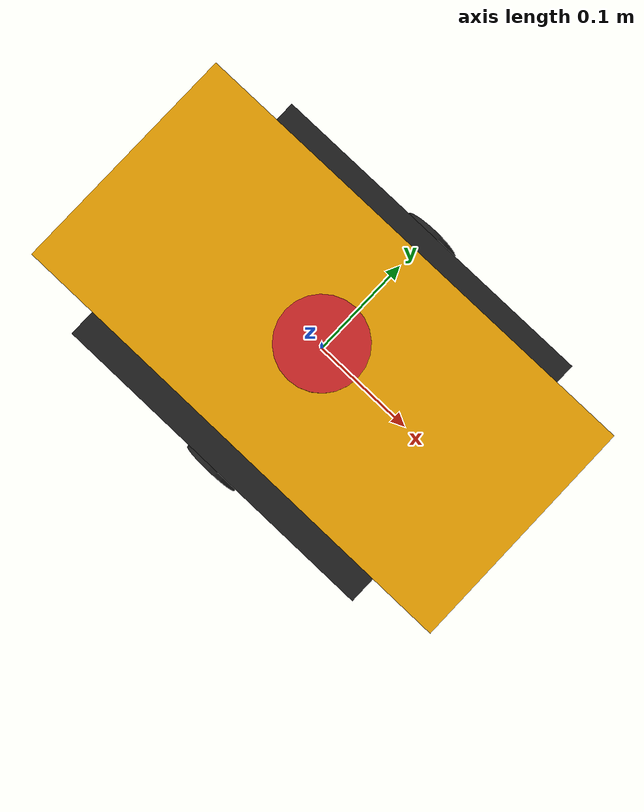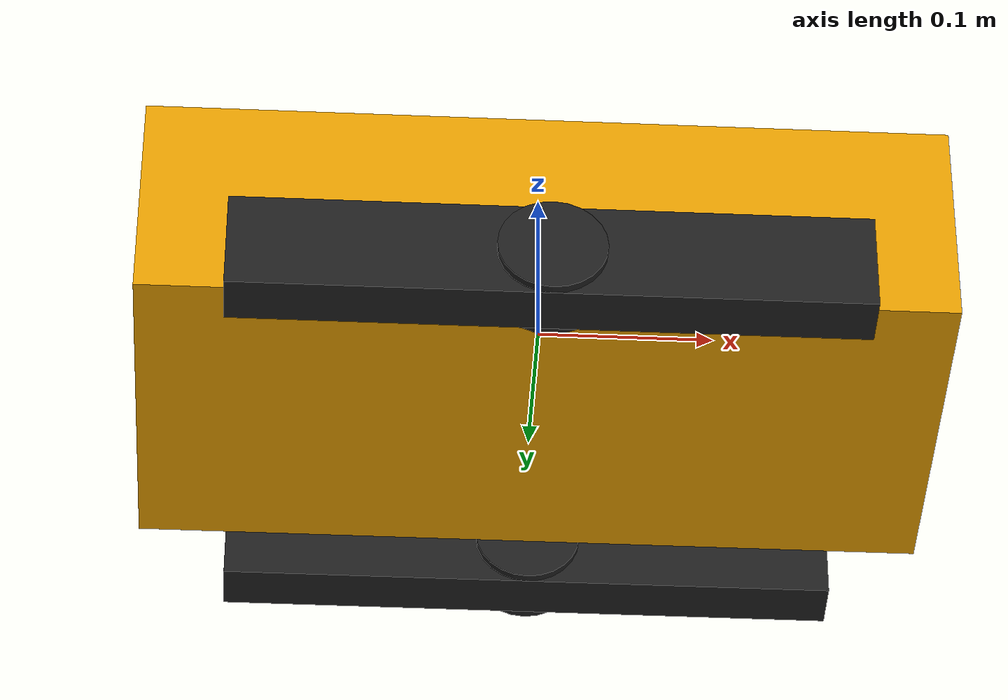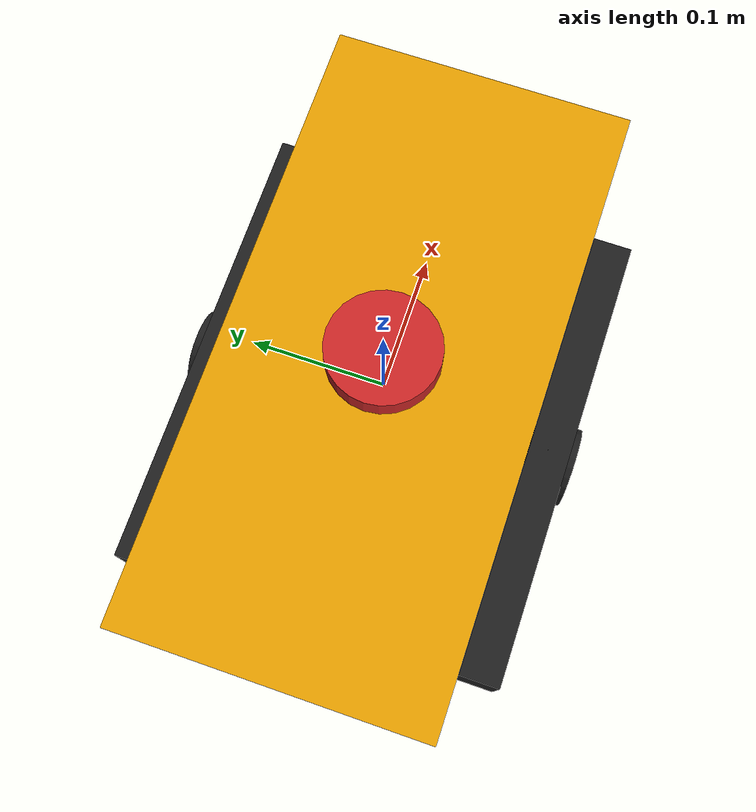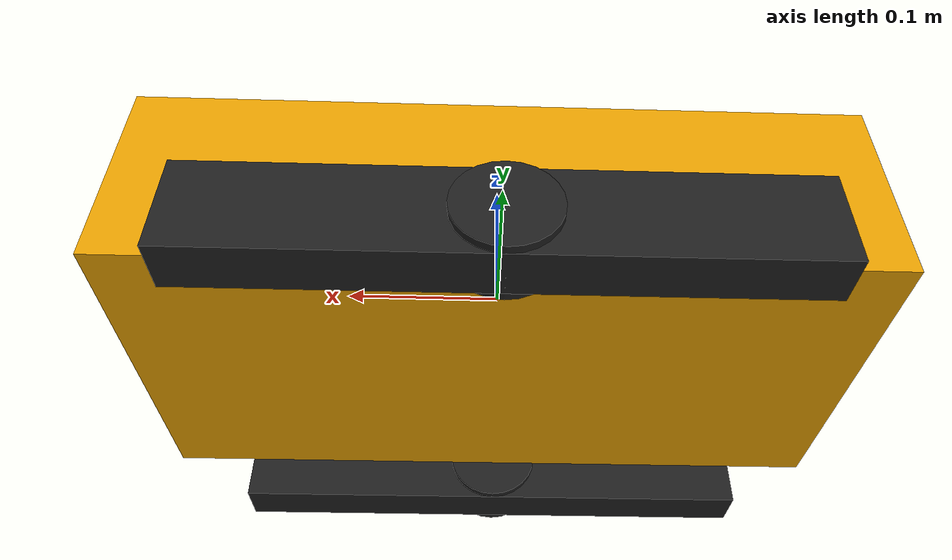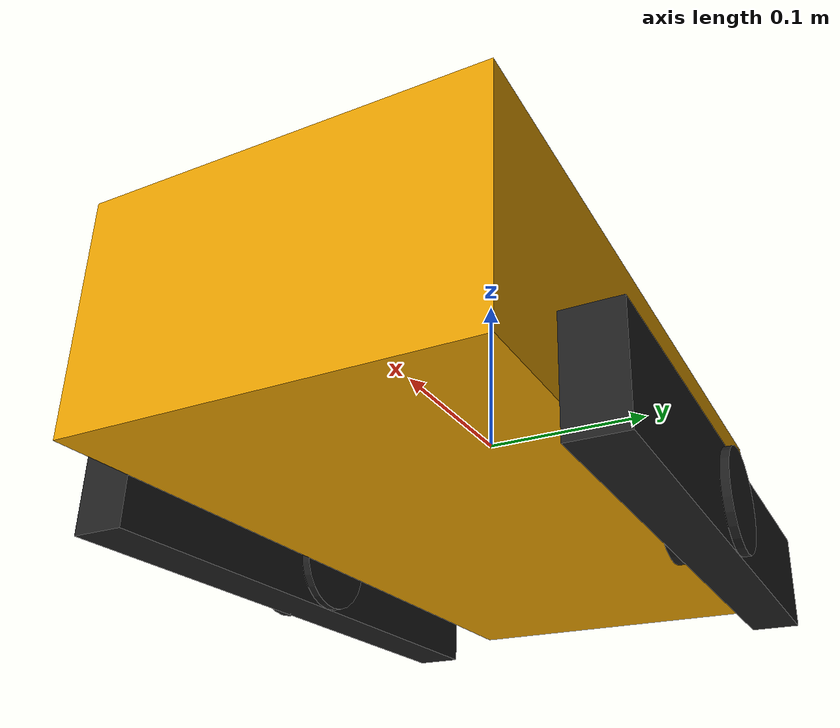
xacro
<?xml version="1.0" ?>

<robot name="eSAUl" xmlns:xacro="http://www.ros.org/wiki/xacro">

  <xacro:property name="chassis_mass" value="40" />
  <xacro:property name="chassis_length" value="0.45" />
  <xacro:property name="chassis_width" value="0.22" />
  <xacro:property name="chassis_height" value="0.13" />

  <xacro:property name="track_mass" value="0.3" />
  <xacro:property name="track_rad" value="0.03" />
  <xacro:property name="track_length" value="0.04" />

  <xacro:property name="box_length" value="0.35" />
  <xacro:property name="box_width" value="0.03" />
  <xacro:property name="box_height" value="0.06" />
  <xacro:property name="wheel_mass" value="10" />

  <xacro:property name="lidar_mass" value="0.1" />
  <xacro:property name="lidar_height" value="0.02"/>
  <xacro:property name="lidar_radius" value="0.04"/>

  <xacro:property name="wheel_friction" value="1.75" />

  <!-- INERTIAL MACROS -->
  <xacro:macro name="null_inertial">
    <inertial>
      <mass value="0.01"/>
      <inertia ixx="0.01" ixy="0" ixz="0"
               iyy="0.01" iyz="0"
               izz="0.01"/>
      </inertial>
  </xacro:macro>

  <xacro:macro name="solid_cuboid_inertial"
               params="width length height mass *origin">
    <inertial>
      <xacro:insert_block name="origin"/>
      <mass value="${mass}"/>
      <inertia ixx="${mass * (width * width + height * height) / 12}"
               ixy="0" ixz="0"
               iyy="${mass * (length * length + height * height) / 12}"
               iyz="0"
               izz="${mass * (width * width + length * length) / 12}"/>
    </inertial>
  </xacro:macro>

    <xacro:macro name="solid_cylinder_inertial"
               params="r h mass *origin">
    <inertial>
      <xacro:insert_block name="origin"/>
      <mass value="${mass}"/>
      <inertia ixx="${(mass * h * h)/12 + (mass * r * r)/4}" ixy="0.0" ixz="0.0"
               iyy="${(mass * h * h)/12 + (mass * r * r)/4}" iyz="0.0"
               izz="${mass / 2 * r * r}" />
    </inertial>
  </xacro:macro>

  <!-- INERTIAL MACROS END -->

  <link name="base_link">
    <collision name="collision_chassis">
      <geometry>
        <box size="${chassis_length} ${chassis_width} ${chassis_height}"/>
      </geometry>
    </collision>
    <visual>
      <geometry>
        <box size="${chassis_length} ${chassis_width} ${chassis_height}"/>
      </geometry>
    </visual>
    <xacro:solid_cuboid_inertial
          length="${chassis_length}" width="${chassis_width}"
          height="${chassis_height}" mass="${chassis_mass}">
      <origin xyz="0 0 0" rpy="0 0 0" />
    </xacro:solid_cuboid_inertial>
  </link>

  <xacro:macro name="link_track" params="name">
    <link name="${name}">
      <collision name="collision_left_track">
        <origin rpy="0 0 0" xyz="0 0 0"/>
        <geometry>
          <box size="${box_length} ${box_width} ${box_height}"/>
        </geometry>
      </collision>
      <visual>
        <origin rpy="0 0 0" xyz="0 0 0"/>
        <geometry>
          <box size="${box_length} ${box_width} ${box_height}"/>
        </geometry>
        <material name="black"/>
      </visual>
      <xacro:solid_cuboid_inertial
            length="${box_length}" width="${box_width}"
            height="${box_height}" mass="${track_mass}">
        <origin xyz="0 0 0" rpy="0 0 0" />
      </xacro:solid_cuboid_inertial>
    </link>
    <gazebo reference="${name}">
      <mu1>0</mu1>
      <mu2>0</mu2>
      <material>Gazebo/Black</material>
    </gazebo>
  </xacro:macro>

  <xacro:macro name="link_wheel" params="name">
    <link name="${name}">
      <xacro:solid_cylinder_inertial
          r="${track_rad}" h="${track_length}"
          mass="${wheel_mass}" >
        <origin xyz="0 0 0" rpy="0 0 0" />
      </xacro:solid_cylinder_inertial>
      <collision name="link_right_wheel_collision">
        <origin rpy="0 1.5707 1.5707" xyz="0 0 0"/>
        <geometry>
          <cylinder length="${track_length}" radius="${track_rad}"/>
        </geometry>
      </collision>
      <visual name="${name}_visual">
        <origin rpy="0 1.5707 1.5707" xyz="0 0 0"/>
        <geometry>
          <cylinder length="${track_length}" radius="${track_rad}"/>
        </geometry>
      </visual>
    </link>
    <gazebo reference="${name}">
      <mu1>1.5</mu1>
      <mu2>1.5</mu2>
      <material>Gazebo/Black</material>
      <kp>10000000</kp>
      <kd>1</kd>
    </gazebo>
  </xacro:macro>

  <xacro:macro name="joint_wheel_right" params="name child origin_xyz">
    <joint name="${name}" type="continuous">
      <origin rpy="0 0 0" xyz="${origin_xyz}"/>
      <child link="${child}"/>
      <parent link="link_right"/>
      <axis rpy="0 0 0" xyz="0 1 0"/>
      <limit effort="10000" velocity="1000"/>
    </joint>
  </xacro:macro>

    <xacro:macro name="joint_wheel_left" params="name child origin_xyz">
    <joint name="${name}" type="continuous">
      <origin rpy="0 0 0" xyz="${origin_xyz}"/>
      <child link="${child}"/>
      <parent link="link_left"/>
      <axis rpy="0 0 0" xyz="0 1 0"/>
      <limit effort="10000" velocity="1000"/>
    </joint>
  </xacro:macro>

  <xacro:macro name="joint_track" params="name child origin_xyz">
    <joint name="${name}" type="fixed">
      <origin rpy="0 0 0" xyz="${origin_xyz}"/>
      <child link="${child}"/>
      <parent link="base_link"/>
      <axis rpy="0 0 0" xyz="0 1 0"/>
      <joint_properties damping="1.0" friction="0.0"/>
    </joint>
  </xacro:macro>

  <!-- Hokuyo Laser -->
  <link name="lidar_link">
    <xacro:solid_cylinder_inertial
        r="${lidar_radius}" h="${lidar_height}"
        mass="${lidar_mass}" >
      <origin xyz="0 0 0" rpy="0 0 0" />
    </xacro:solid_cylinder_inertial>
    <collision>
      <origin xyz="0 0 0" rpy="0 0 0"/>
      <geometry>
        <cylinder length="${lidar_height}" radius="${lidar_radius}"/>
      </geometry>
    </collision>

    <visual>
      <origin xyz="0 0 0" rpy="0 0 0"/>
      <geometry>
        <cylinder length="${lidar_height}" radius="${lidar_radius}"/>
      </geometry>
    </visual>
  </link>

  <gazebo reference="lidar_link">
    <material>Gazebo/Red</material>
    <sensor type="ray" name="head_hokuyo_sensor">
      <pose>0 0 0 0 0 0</pose>
      <visualize>false</visualize>
      <update_rate>40</update_rate>
      <ray>
        <scan>
          <horizontal>
            <samples>720</samples>
            <resolution>1</resolution>
            <min_angle>-3.14</min_angle>
            <max_angle>3.14</max_angle>
          </horizontal>
        </scan>
        <range>
          <min>0.10</min>
          <max>30.0</max>
          <resolution>0.01</resolution>
        </range>
        <noise>
          <type>gaussian</type>
          <mean>0.0</mean>
          <stddev>0.01</stddev>
        </noise>
      </ray>
      <plugin name="gazebo_ros_head_hokuyo_controller" filename="libgazebo_ros_laser.so">
        <topicName>/eSAUl/laser/scan</topicName>
        <frameName>lidar_link</frameName>
      </plugin>
    </sensor>
  </gazebo>

  <joint name="lidar_joint" type="fixed">
    <axis xyz="0 1 0" />
    <origin xyz="0 0 ${chassis_height/2 + lidar_height/2}" rpy="0 0 0"/>
    <parent link="base_link"/>
    <child link="lidar_link"/>
  </joint>

  <xacro:link_track name="link_right" />
	<xacro:joint_track name="joint_right" child="link_right" origin_xyz="0 ${-chassis_width/2-box_width/1.5} ${-2*box_width}" />

  <xacro:link_wheel name="right_wheel_2" />
	<xacro:joint_wheel_right name="joint_right_wheel_2" child="right_wheel_2" origin_xyz="0 0 0" />

  <xacro:link_track name="link_left" />
	<xacro:joint_track name="joint_left" child="link_left" origin_xyz="0 ${chassis_width/2+box_width/1.5} ${-2*box_width}" />

  <xacro:link_wheel name="left_wheel_2" />
	<xacro:joint_wheel_left name="joint_left_wheel_2" child="left_wheel_2" origin_xyz="0 0 0" />

  	<gazebo>
    		<plugin name="ModelPlugin" filename="libesaul_description.so" >
      			<robotName>eSAUl</robotName>
            <joint_left1>joint_left_wheel_1</joint_left1>
            <joint_right1>joint_right_wheel_1</joint_right1>
            <joint_left2>joint_left_wheel_2</joint_left2>
            <joint_right2>joint_right_wheel_2</joint_right2>
            <joint_left3>joint_left_wheel_3</joint_left3>
            <joint_right3>joint_right_wheel_3</joint_right3>
            <width_chassis>${chassis_width}</width_chassis>
            <wh_rad>${track_rad}</wh_rad>
   		 </plugin>
	</gazebo>

 </robot>
